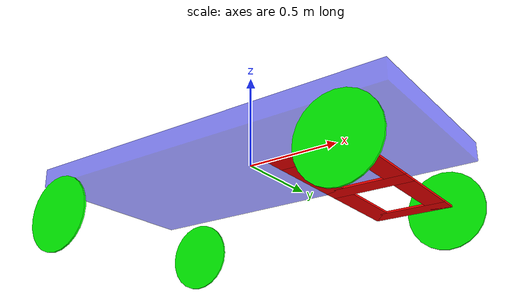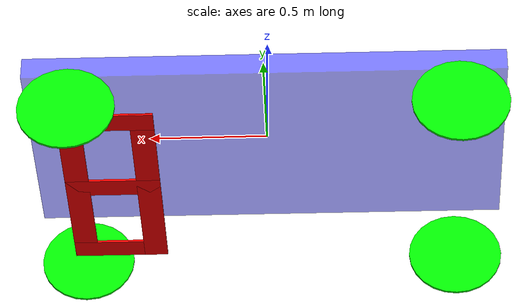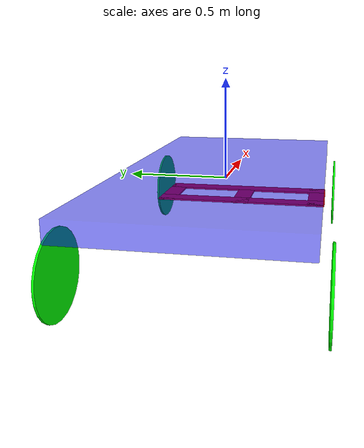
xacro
<?xml version="1.0"?>
<robot
    xmlns:gazebo="http://playerstage.sourceforge.net/gazebo/xmlschema/#gz"
    xmlns:model="http://playerstage.sourceforge.net/gazebo/xmlschema/#model"
    xmlns:sensor="http://playerstage.sourceforge.net/gazebo/xmlschema/#sensor"
    xmlns:body="http://playerstage.sourceforge.net/gazebo/xmlschema/#body"
    xmlns:geom="http://playerstage.sourceforge.net/gazebo/xmlschema/#geom"
    xmlns:joint="http://playerstage.sourceforge.net/gazebo/xmlschema/#joint"
    xmlns:controller="http://playerstage.sourceforge.net/gazebo/xmlschema/#controller"
    xmlns:interface="http://playerstage.sourceforge.net/gazebo/xmlschema/#interface"
    xmlns:rendering="http://playerstage.sourceforge.net/gazebo/xmlschema/#rendering"
    xmlns:physics="http://playerstage.sourceforge.net/gazebo/xmlschema/#physics"
    name="ackermann">

    <property name="M_PI" value="3.1415926535897931" />

    <material name="Red">
    	<color rgba="1.0 0 0 1.0"/>
    </material>
    <material name="Green">
    	<color rgba="0 1.0 0 1.0"/>
    </material>
    <material name="Blue">
    	<color rgba="0 0 1.0 0.5"/>
    </material>

	<!-- Main body -->
    <link name="base_link">
        <inertial>
            <mass value="1.0" />
            <origin xyz="0 0 0" />
            <inertia  ixx="1.0" ixy="0.0"  ixz="0.0"  iyy="1.0"  iyz="0.0"  izz="1.0" />
        </inertial>
        <visual>
            <origin xyz="0 0 0" rpy="0 0 0" />
            <geometry>
                <box size="2.0 1.0 0.1" />
            </geometry>
            <material name="Blue"/>
        </visual>
        <collision>
            <origin xyz="0 0 0" rpy="0 0 0" />
            <geometry>
                <box size="2.0 1.0 0.1" />
            </geometry>
        </collision>
    </link>
    <gazebo reference="base_link">
        <material>Gazebo/Blue</material>
    </gazebo>

    <!-- Front link of Ackermann -->
    <joint name="front_joint" type="fixed">
    	<parent link="base_link"/>
    	<child link="front_link"/>
    	<origin xyz="0.8 0.0 -0.25"/>
    </joint>
    <link name="front_link">
        <inertial>
            <mass value="1.0" />
            <origin xyz="0 0 0" />
            <inertia  ixx="1.0" ixy="0.0"  ixz="0.0"  iyy="1.0"  iyz="0.0"  izz="1.0" />
        </inertial>
        <visual>
            <geometry>
                <box size="0.1 1.0 0.01" />
            </geometry>
            <material name="Red"/>
        </visual>
        <collision>
            <geometry>
                <box size="0.1 1.0 0.01" />
            </geometry>
        </collision>
    </link>
    <gazebo reference="front_link">
        <material>Gazebo/Red</material>
    </gazebo>

    <!-- a link aligned with the steer direction -->
    <joint name="steer_joint" type="revolute" >
        <limit lower="-0.5" upper="0.5" effort="100" velocity="10" />
        <axis xyz="0 0 1" />
        <parent link="front_link" />
        <child link="steer_link" />
        <origin xyz="0.0 0.0 0.0" rpy="0 0 0" />
    </joint>
    <link name="steer_link">
        <inertial>
            <mass value="1.0" />
            <origin xyz="0 0 0" />
            <inertia  ixx="1.0" ixy="0.0"  ixz="0.0"  iyy="1.0"  iyz="0.0"  izz="1.0" />
        </inertial>
        <visual>
            <origin xyz="-0.15 0 0" />
            <geometry>
                <box size="0.4 0.1 0.01" />
            </geometry>
            <material name="Red"/>
        </visual>
        <collision>
            <origin xyz="-0.15 0 0" />
            <geometry>
                <box size="0.4 0.1 0.01" />
            </geometry>
        </collision>
    </link>
    <gazebo reference="steer_link">
        <material>Gazebo/Red</material>
    </gazebo>

    <!-- the left Ackermann bar -->
    <joint name="front_left_bar_joint" type="revolute" >
        <limit lower="-0.5" upper="0.5" effort="100" velocity="10" />
        <axis xyz="0 0 1" />
        <parent link="front_link" />
        <child link="front_left_bar_link" />
        <origin xyz="0.0 0.45 0.0" rpy="0 0 0" />
    </joint>
    <link name="front_left_bar_link">
        <inertial>
            <mass value="1.0" />
            <origin xyz="0 0 0" />
            <inertia  ixx="1.0" ixy="0.0"  ixz="0.0"  iyy="1.0"  iyz="0.0"  izz="1.0" />
        </inertial>
        <visual>
            <origin xyz="-0.15 0 0" />
            <geometry>
                <box size="0.4 0.1 0.01" />
            </geometry>
            <material name="Red"/>
        </visual>
        <collision>
            <origin xyz="-0.15 0 0" />
            <geometry>
                <box size="0.4 0.1 0.01" />
            </geometry>
        </collision>
    </link>
    <gazebo reference="front_left_bar_link">
        <material>Gazebo/Red</material>
    </gazebo>

    <!-- the right Ackermann bar -->
    <joint name="front_right_bar_joint" type="revolute" >
        <limit lower="-0.5" upper="0.5" effort="100" velocity="10" />
        <axis xyz="0 0 1" />
        <parent link="front_link" />
        <child link="front_right_bar_link" />
        <origin xyz="0.0 -0.45 0.0" rpy="0 0 0" />
    </joint>
    <link name="front_right_bar_link">
        <inertial>
            <mass value="1.0" />
            <origin xyz="0 0 0" />
            <inertia  ixx="1.0" ixy="0.0"  ixz="0.0"  iyy="1.0"  iyz="0.0"  izz="1.0" />
        </inertial>
        <visual>
            <origin xyz="-0.15 0 0" />
            <geometry>
                <box size="0.4 0.1 0.01" />
            </geometry>
            <material name="Red"/>
        </visual>
        <collision>
            <origin xyz="-0.15 0 0" />
            <geometry>
                <box size="0.4 0.1 0.01" />
            </geometry>
        </collision>
    </link>
    <gazebo reference="front_right_bar_link">
        <material>Gazebo/Red</material>
    </gazebo>

	<!-- the front left wheel -->
    <joint name="front_left_wheel_joint" type="continuous" >
        <axis xyz="0 1 0" />
        <parent link="front_left_bar_link" />
        <child link="front_left_wheel_link" />
        <origin xyz="0 0.1 0" rpy="0 0 0" />
    </joint>
    <link name="front_left_wheel_link">
        <inertial>
            <mass value="1.0" />
            <origin xyz="0 0 0" />
            <inertia  ixx="1.0" ixy="0.0"  ixz="0.0"  iyy="1.0"  iyz="0.0"  izz="1.0" />
        </inertial>
        <visual>
            <origin xyz="0 0 0" rpy="${M_PI/2} 0 0" />
            <geometry>
                <cylinder radius="0.2" length="0.01" />
            </geometry>
            <material name="Green"/>
        </visual>
        <collision>
            <origin xyz="0 0 0" rpy="${M_PI/2} 0 0" />
            <geometry>
                <cylinder radius="0.2" length="0.01" />
            </geometry>
        </collision>
    </link>
    <gazebo reference="front_left_wheel_link">
        <material>Gazebo/Green</material>
    </gazebo>

	<!-- the front right wheel -->
    <joint name="front_right_wheel_joint" type="continuous" >
        <axis xyz="0 1 0" />
        <parent link="front_right_bar_link" />
        <child link="front_right_wheel_link" />
        <origin xyz="0 -0.1 0" rpy="0 0 0" />
    </joint>
    <link name="front_right_wheel_link">
        <inertial>
            <mass value="1.0" />
            <origin xyz="0 0 0" />
            <inertia  ixx="1.0" ixy="0.0"  ixz="0.0"  iyy="1.0"  iyz="0.0"  izz="1.0" />
        </inertial>
        <visual>
            <origin xyz="0 0 0" rpy="${M_PI/2} 0 0" />
            <geometry>
                <cylinder radius="0.2" length="0.01" />
            </geometry>
            <material name="Green"/>
        </visual>
        <collision>
            <origin xyz="0 0 0" rpy="${M_PI/2} 0 0" />
            <geometry>
                <cylinder radius="0.2" length="0.01" />
            </geometry>
        </collision>
    </link>
    <gazebo reference="front_right_wheel_link">
        <material>Gazebo/Green</material>
        <turnGravityOff>false</turnGravityOff>
    </gazebo>

	<!-- the Ackerman bar -->
    <joint name="ackermann_joint" type="revolute" >
        <limit lower="-0.5" upper="0.5" effort="100" velocity="10" />
        <axis xyz="0 0 1" />
        <parent link="steer_link" />
        <child link="ackermann_bar_link" />
        <origin xyz="-0.3 0 0" rpy="0 0 0" />
    </joint>
    <link name="ackermann_bar_link">
        <inertial>
            <mass value="1.0" />
            <origin xyz="0 0 0" />
            <inertia  ixx="1.0" ixy="0.0"  ixz="0.0"  iyy="1.0"  iyz="0.0"  izz="1.0" />
        </inertial>
        <visual>
            <geometry>
                <box size="0.1 1.0 0.01" />
            </geometry>
            <material name="Red"/>
        </visual>
        <collision>
            <geometry>
                <box size="0.1 1.0 0.01" />
            </geometry>
        </collision>
    </link>
    <gazebo reference="front_link">
        <material>Gazebo/Red</material>
    </gazebo>
    <gazebo reference="ackermann_bar_link">
        <material>Gazebo/Red</material>
    </gazebo>

	<!-- Gazebo Ackermann loop joints -->
    <gazebo>
      <joint:hinge name="ackermann_left_bar_joint">
        <body1>ackermann_bar_link</body1>
        <body2>front_left_bar_link</body2>
        <anchor>ackermann_bar_link</anchor>
        <axis>0 0 1</axis>
        <anchorOffset>0 0.45 0</anchorOffset>
      </joint:hinge>
    </gazebo>
    <gazebo>
      <joint:hinge name="ackermann_right_bar_joint">
        <body1>ackermann_bar_link</body1>
        <body2>front_right_bar_link</body2>
        <anchor>ackermann_bar_link</anchor>
        <axis>0 0 1</axis>
        <anchorOffset>0 -0.45 0</anchorOffset>
      </joint:hinge>
    </gazebo>

	<!-- the back left wheel -->
    <joint name="back_left_wheel_joint" type="continuous" >
        <axis xyz="0 1 0" />
        <parent link="base_link" />
        <child link="back_left_wheel_link" />
        <origin xyz="-0.8 0.55 -0.25" rpy="0 0 0" />
    </joint>
    <link name="back_left_wheel_link">
        <inertial>
            <mass value="1.0" />
            <origin xyz="0 0 0" />
            <inertia  ixx="1.0" ixy="0.0"  ixz="0.0"  iyy="1.0"  iyz="0.0"  izz="1.0" />
        </inertial>
        <visual>
            <origin xyz="0 0 0" rpy="${M_PI/2} 0 0" />
            <geometry>
                <cylinder radius="0.2" length="0.01" />
            </geometry>
            <material name="Green"/>
        </visual>
        <collision>
            <origin xyz="0 0 0" rpy="${M_PI/2} 0 0" />
            <geometry>
                <cylinder radius="0.2" length="0.01" />
            </geometry>
        </collision>
    </link>
    <gazebo reference="back_left_wheel_link">
        <material>Gazebo/Green</material>
    </gazebo>

	<!-- the back right wheel -->
    <joint name="back_right_wheel_joint" type="continuous" >
        <axis xyz="0 1 0" />
        <parent link="base_link" />
        <child link="back_right_wheel_link" />
        <origin xyz="-0.8 -0.55 -0.25" rpy="0 0 0" />
    </joint>
    <link name="back_right_wheel_link">
        <inertial>
            <mass value="1.0" />
            <origin xyz="0 0 0" />
            <inertia  ixx="1.0" ixy="0.0"  ixz="0.0"  iyy="1.0"  iyz="0.0"  izz="1.0" />
        </inertial>
        <visual>
            <origin xyz="0 0 0" rpy="${M_PI/2} 0 0" />
            <geometry>
                <cylinder radius="0.2" length="0.01" />
            </geometry>
            <material name="Green"/>
        </visual>
        <collision>
            <origin xyz="0 0 0" rpy="${M_PI/2} 0 0" />
            <geometry>
                <cylinder radius="0.2" length="0.01" />
            </geometry>
        </collision>
    </link>
    <gazebo reference="back_right_wheel_link">
        <material>Gazebo/Green</material>
    </gazebo>

    <!-- Ackermann plugin -->
    <gazebo>
      <controller:ackermann_plugin name="ackermann_controller"
			           plugin="libackermann_plugin.so">
	<alwaysOn>true</alwaysOn>
	<update>100</update>
	<updateRate>100.0</updateRate>
	<leftJoint>back_left_wheel_joint</leftJoint>
	<rightJoint>back_right_wheel_joint</rightJoint>
	<steerJoint>steer_joint</steerJoint>
	<wheelSeparationWidth>2.12</wheelSeparationWidth>
	<wheelSeparationLength>2.33918</wheelSeparationLength>
        <!-- Shouldn't this wheel diameter include the tire?
             (40 cm is about right for the bare rim)
          -->
	<wheelDiameter>0.4</wheelDiameter>
	<driveTorque>5</driveTorque>
	<steerTorque>5</steerTorque>
	<interface:position name="position_iface_0" />
	<robotNamespace>/</robotNamespace>
	<topicName>pilot/drive</topicName>
      </controller:ackermann_plugin>
    </gazebo>
</robot>
